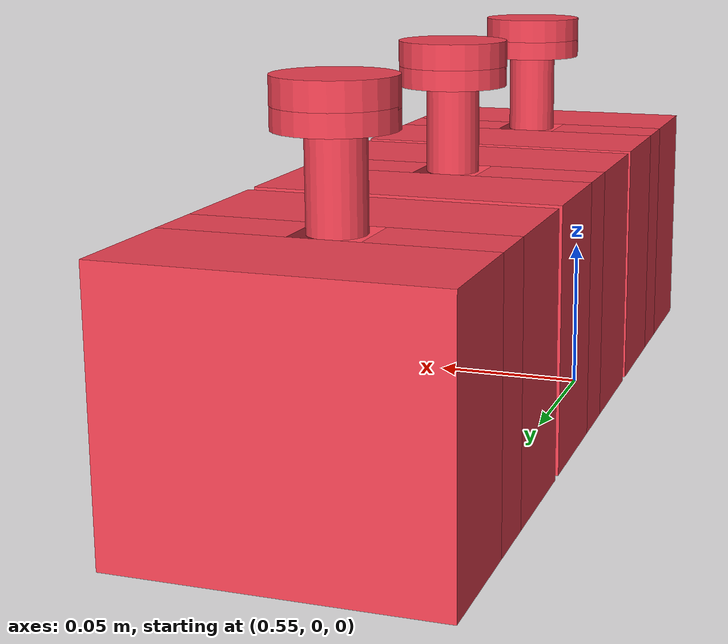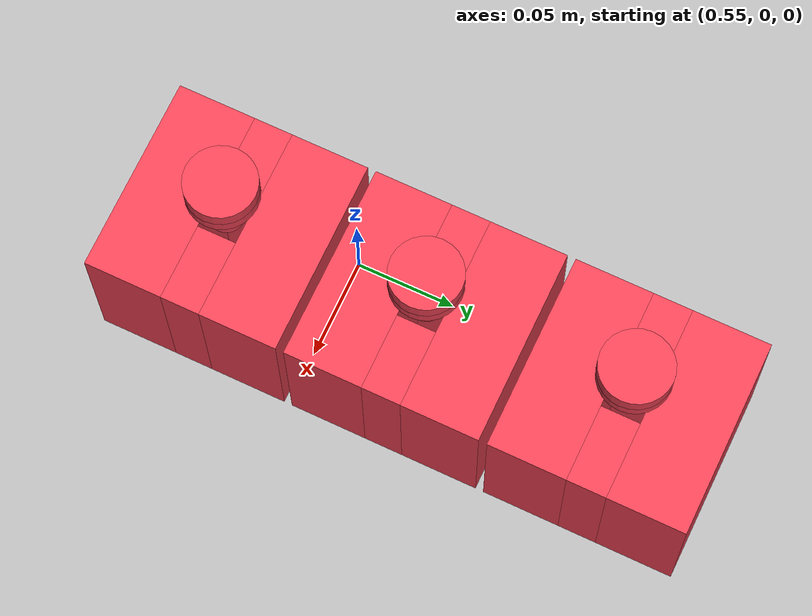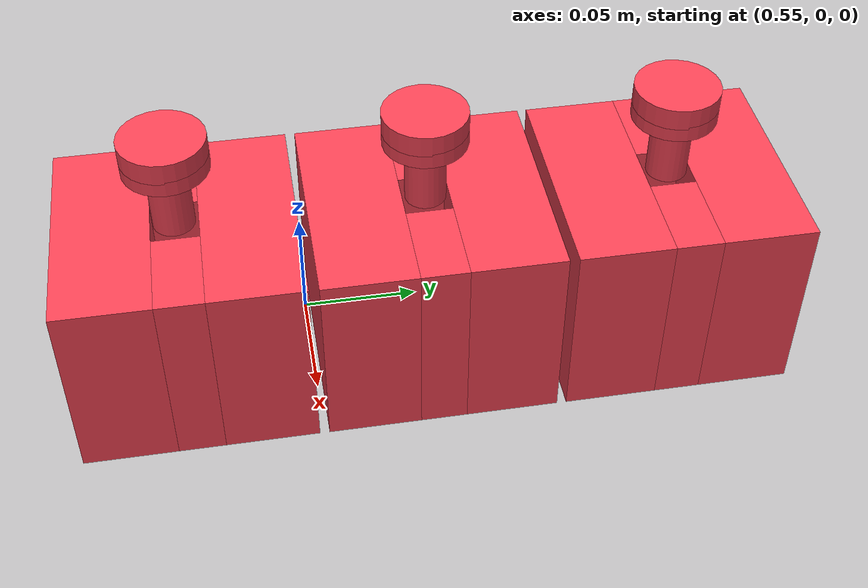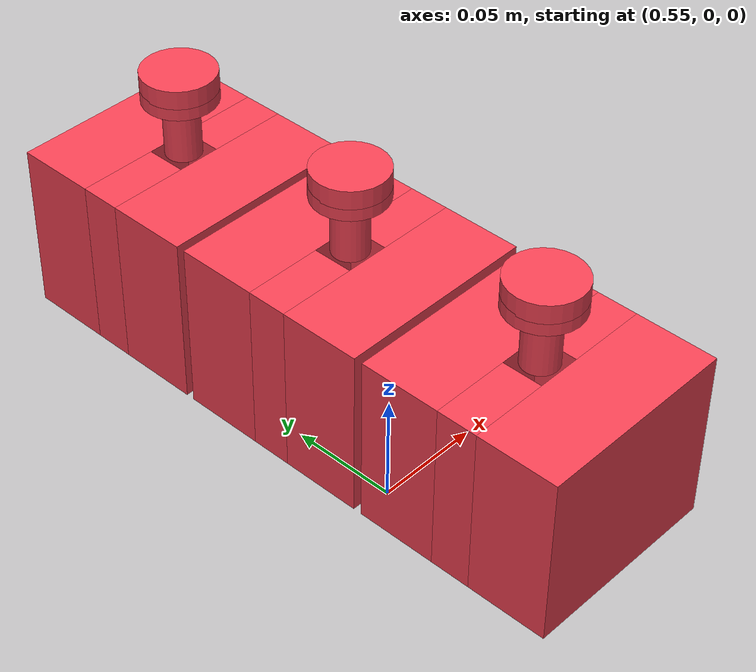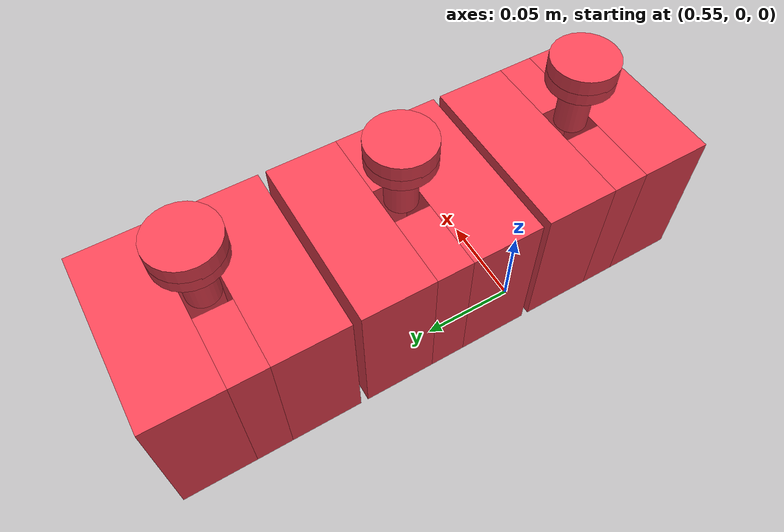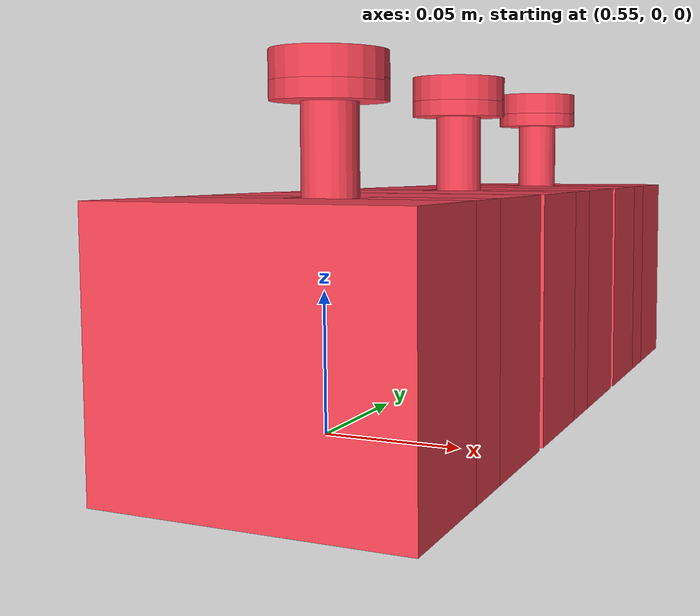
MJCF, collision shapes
<mujoco model="buttonbox">
    <compiler angle="radian" inertiafromgeom="auto" inertiagrouprange="1 5"/>

    <asset>
        <texture name="T_btn" type="cube" file="metaworld/button/metal1.png"/>

        <material name="btn_col" rgba="0.96 0.26 0.33 0.5" shininess="0" specular="0"/>
        <material name="btn_red" rgba="0.96 0.26 0.33 1" shininess="1" reflectance=".7" specular=".5"/>
        <material name="btn_top_0" rgba="0.6 0.72 0.94 1" shininess="1" reflectance=".7" specular=".5"/>
        <material name="btn_top_1" rgba="1 1 1 1" shininess="1" reflectance=".7" specular=".5"/>
        <material name="btn_top_2" rgba="0.6 0.72 0.94 1" shininess="1" reflectance=".7" specular=".5"/>
        <material name="btn_black" rgba=".15 .15 .15 1" shininess="1" reflectance=".7" specular=".5"/>
        <material name="btn_metal" rgba=".8 .8 .8 1" texture="T_btn" shininess="1" reflectance="1" specular="1"/>
    </asset>

    <default>
        <default class="buttonbox_base">
            <joint armature="0.001" damping="2" limited="true"/>
            <geom conaffinity="0" contype="0" group="1" type="mesh"/>
            <position ctrllimited="true" ctrlrange="0 1.57"/>
            <default class="buttonbox_viz">
                <geom condim="4" type="mesh"/>
            </default>
            <default class="buttonbox_col">
                <geom conaffinity="1" condim="3" contype="1" group="4" material="btn_col" solimp="0.99 0.99 0.01" solref="0.01 1"/>
            </default>
            <site type="sphere" size=".01" rgba="0 1 0 1" group="5"/>
        </default>
    </default>

    <asset>
        <mesh file="metaworld/button/stopbot.stl" name="stopbot" scale="0.4 0.4 0.4"/>
        <mesh file="metaworld/button/stopbutton.stl" name="stopbutton" scale="0.4 0.4 0.4"/>
        <mesh file="metaworld/button/stopbuttonrim.stl" name="stopbuttonrim" scale="0.4 0.4 0.4"/>
        <mesh file="metaworld/button/stopbuttonrod.stl" name="stopbuttonrod" scale="0.4 0.4 0.4"/>
        <mesh file="metaworld/button/stoptop.stl" name="stoptop" scale="0.4 0.4 0.4"/>
    </asset>

    <worldbody>
        <body childclass="buttonbox_base" name="buttonbox_0" pos="0.58 -0.05 0.048" euler="-1.57 0 0">
            <geom material="btn_black" mesh="stopbot" pos="0.0 -0.024 0.0"/>
            <geom material="btn_metal" euler="1.57 0 0" mesh="stopbuttonrim" pos="0.0 -0.0356 0.0"/>
            <geom material="btn_top_0" mesh="stoptop" pos="0.0 -0.024 0.0"/>

            <geom class="buttonbox_col" pos="0.0 0.0048 0.0288" size="0.048 0.0408 0.0192" type="box"/>
            <geom class="buttonbox_col" pos="0.0 0.0048 -0.0288" size="0.048 0.0408 0.0192" type="box"/>
            <geom class="buttonbox_col" pos="-0.0292 0.0048 0.0" size="0.0188 0.0408 0.0096" type="box"/>
            <geom class="buttonbox_col" pos="0.0292 0.0048 0.0" size="0.0188 0.0408 0.0096" type="box"/>
            <site name="btntop_0" pos="0.0 -0.0774 0.0" group="5"/>

            <body childclass="buttonbox_base" name="button_0">
                <inertial pos="0.0 -0.0774 0.0" mass=".01" diaginertia="0.001 0.001 0.001"/>
                <joint name="buttonbox_joint_0" pos="0.0 0.0 0.0" axis="0 -1 0" type="slide" springref=".5" limited="true" stiffness="0.5" range="-0.024 0.0" damping="1"/>
                <geom material="btn_red" euler="1.57 0 0" mesh="stopbutton" pos="0.0 -0.0632 0.0" name="btngeom_0"/>
                <geom material="btn_black" euler="1.57 0 0" mesh="stopbuttonrod" pos="0.0 -0.0504 0.0"/>

                <geom class="buttonbox_col" euler="1.57 0 0" pos="0.0 -0.0512 0.0" size="0.0084 0.0156" type="cylinder"/>
                <geom class="buttonbox_col" euler="1.57 0 0" pos="0.0 -0.0664 0.0" size="0.0172 0.0032" type="cylinder"/>
                <geom class="buttonbox_col" euler="1.57 0 0" pos="0.0 -0.0732 0.0" size="0.0172 0.0044" type="cylinder"/>
            </body>
        </body>
        <body childclass="buttonbox_base" name="buttonbox_1" pos="0.58 0.05 0.048" euler="-1.57 0 0">
            <geom material="btn_black" mesh="stopbot" pos="0.0 -0.024 0.0"/>
            <geom material="btn_metal" euler="1.57 0 0" mesh="stopbuttonrim" pos="0.0 -0.0356 0.0"/>
            <geom material="btn_top_1" mesh="stoptop" pos="0.0 -0.024 0.0"/>

            <geom class="buttonbox_col" pos="0.0 0.0048 0.0288" size="0.048 0.0408 0.0192" type="box"/>
            <geom class="buttonbox_col" pos="0.0 0.0048 -0.0288" size="0.048 0.0408 0.0192" type="box"/>
            <geom class="buttonbox_col" pos="-0.0292 0.0048 0.0" size="0.0188 0.0408 0.0096" type="box"/>
            <geom class="buttonbox_col" pos="0.0292 0.0048 0.0" size="0.0188 0.0408 0.0096" type="box"/>
            <site name="btntop_1" pos="0.0 -0.0732 0.0" group="5"/>

            <body childclass="buttonbox_base" name="button_1">
                <inertial pos="0.0 -0.0774 0.0" mass=".01" diaginertia="0.001 0.001 0.001"/>
                <joint name="buttonbox_joint_1" pos="0.0 0.0 0.0" axis="0 -1 0" type="slide" springref=".5" limited="true" stiffness="0.5" range="-0.024 0.0" damping="1"/>
                <geom material="btn_red" euler="1.57 0 0" mesh="stopbutton" pos="0.0 -0.0632 0.0" name="btngeom_1"/>
                <geom material="btn_black" euler="1.57 0 0" mesh="stopbuttonrod" pos="0.0 -0.0504 0.0"/>

                <geom class="buttonbox_col" euler="1.57 0 0" pos="0.0 -0.0512 0.0" size="0.0084 0.0156" type="cylinder"/>
                <geom class="buttonbox_col" euler="1.57 0 0" pos="0.0 -0.0664 0.0" size="0.0172 0.0032" type="cylinder"/>
                <geom class="buttonbox_col" euler="1.57 0 0" pos="0.0 -0.0732 0.0" size="0.0172 0.0044" type="cylinder"/>
            </body>
        </body>
        <body childclass="buttonbox_base" name="buttonbox_2" pos="0.58 0.15 0.048" euler="-1.57 0 0">
            <geom material="btn_black" mesh="stopbot" pos="0.0 -0.024 0.0"/>
            <geom material="btn_metal" euler="1.57 0 0" mesh="stopbuttonrim" pos="0.0 -0.0356 0.0"/>
            <geom material="btn_top_2" mesh="stoptop" pos="0.0 -0.024 0.0"/>

            <geom class="buttonbox_col" pos="0.0 0.0048 0.0288" size="0.048 0.0408 0.0192" type="box"/>
            <geom class="buttonbox_col" pos="0.0 0.0048 -0.0288" size="0.048 0.0408 0.0192" type="box"/>
            <geom class="buttonbox_col" pos="-0.0292 0.0048 0.0" size="0.0188 0.0408 0.0096" type="box"/>
            <geom class="buttonbox_col" pos="0.0292 0.0048 0.0" size="0.0188 0.0408 0.0096" type="box"/>
            <site name="btntop_2" pos="0.0 -0.0732 0.0" group="5"/>

            <body childclass="buttonbox_base" name="button_2">
                <inertial pos="0.0 -0.0774 0.0" mass=".01" diaginertia="0.001 0.001 0.001"/>
                <joint name="buttonbox_joint_2" pos="0.0 0.0 0.0" axis="0 -1 0" type="slide" springref=".5" limited="true" stiffness="0.5" range="-0.024 0.0" damping="1"/>
                <geom material="btn_red" euler="1.57 0 0" mesh="stopbutton" pos="0.0 -0.0632 0.0" name="btngeom_2"/>
                <geom material="btn_black" euler="1.57 0 0" mesh="stopbuttonrod" pos="0.0 -0.0504 0.0"/>

                <geom class="buttonbox_col" euler="1.57 0 0" pos="0.0 -0.0512 0.0" size="0.0084 0.0156" type="cylinder"/>
                <geom class="buttonbox_col" euler="1.57 0 0" pos="0.0 -0.0664 0.0" size="0.0172 0.0032" type="cylinder"/>
                <geom class="buttonbox_col" euler="1.57 0 0" pos="0.0 -0.0732 0.0" size="0.0172 0.0044" type="cylinder"/>
            </body>
        </body>
    </worldbody>
</mujoco>
